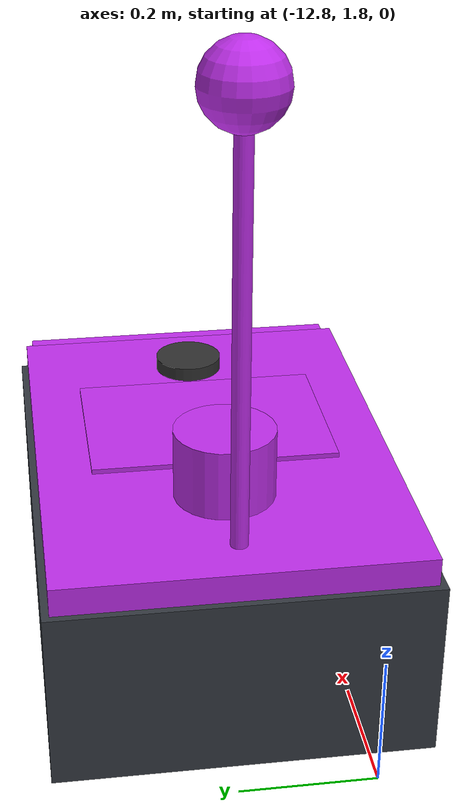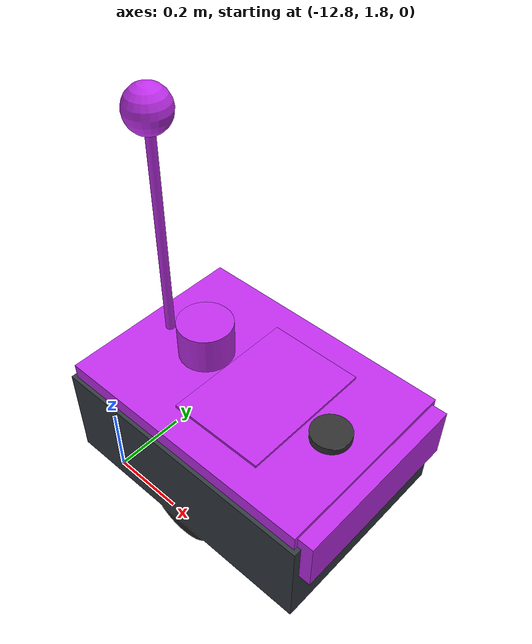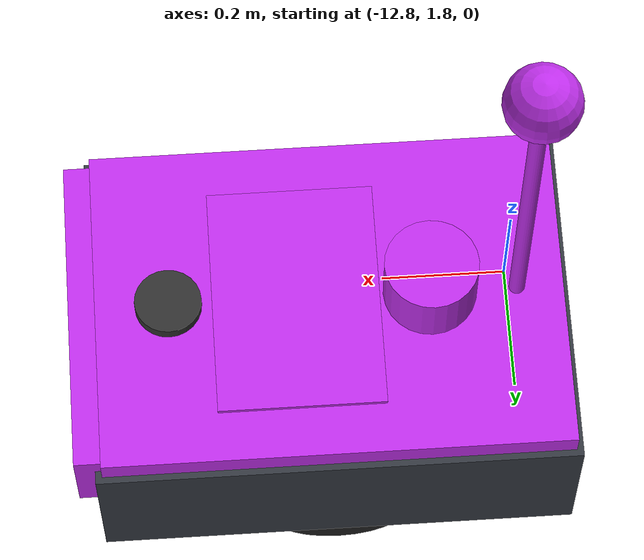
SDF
<sdf version="1.8">
 <world name="warehouse_3d">
  <model name="amr_robot_epsilon">
   <pose>-12.5 2.0 0.05 0 0 0.0</pose>
   <link name="robot_epsilon/base_footprint">
    <inertial>
     <pose>0.003956442831215972 0 0.17635208711433761 0 0 0</pose>
     <mass>27.550000000000001</mass>
     <inertia>
      <ixx>0.50626838475499114</ixx>
      <ixy>0</ixy>
      <ixz>-0.012657622504537201</ixz>
      <iyy>0.86224713248638873</iyy>
      <iyz>0</iyz>
      <izz>1.012238747731397</izz>
     </inertia>
    </inertial>
    <collision name="robot_epsilon/base_footprint_fixed_joint_lump__robot_epsilon/base_link_collision">
     <pose>0 0 0.17999999999999999 0 0 0</pose>
     <geometry><box><size>0.71999999999999997 0.52000000000000002 0.26000000000000001</size></box></geometry>
    </collision>
    <collision name="robot_epsilon/base_footprint_fixed_joint_lump__robot_epsilon/front_caster_link_collision_1">
     <pose>0.28000000000000003 0 0.040000000000000001 0 0 0</pose>
     <geometry><sphere><radius>0.040000000000000001</radius></sphere></geometry>
    </collision>
    <collision name="robot_epsilon/base_footprint_fixed_joint_lump__robot_epsilon/lidar_link_collision_2">
     <pose>0.23999999999999999 0 0.34000000000000002 0 0 0</pose>
     <geometry>
      <cylinder><length>0.059999999999999998</length><radius>0.050000000000000003</radius></cylinder>
     </geometry>
    </collision>
    <collision name="robot_epsilon/base_footprint_fixed_joint_lump__robot_epsilon/rear_caster_link_collision_3">
     <pose>-0.28000000000000003 0 0.040000000000000001 0 0 0</pose>
     <geometry><sphere><radius>0.040000000000000001</radius></sphere></geometry>
    </collision>
    <visual name="robot_epsilon/base_footprint_fixed_joint_lump__robot_epsilon/base_link_visual">
     <pose>0 0 0.17999999999999999 0 0 0</pose>
     <geometry><box><size>0.71999999999999997 0.52000000000000002 0.26000000000000001</size></box></geometry>
     <material>
      <diffuse>0.200000003 0.219999999 0.25 1</diffuse>
      <ambient>0.150000006 0.180000007 0.200000003 1</ambient>
     </material>
    </visual>
    <visual name="robot_epsilon/base_footprint_fixed_joint_lump__robot_epsilon/camera_link_visual_1">
     <pose>0.37 0 0.20000000000000001 0 0 0</pose>
     <geometry><box><size>0.029999999999999999 0.080000000000000002 0.029999999999999999</size></box></geometry>
     <material>
      <diffuse>0.187500015 0.187500015 0.187500015 1</diffuse>
      <ambient>0.187500015 0.187500015 0.187500015 1</ambient>
     </material>
    </visual>
    <visual name="robot_epsilon/base_footprint_fixed_joint_lump__robot_epsilon/front_caster_link_visual_2">
     <pose>0.28000000000000003 0 0.040000000000000001 0 0 0</pose>
     <geometry><sphere><radius>0.040000000000000001</radius></sphere></geometry>
     <material><diffuse>0.125 0.125 0.125 1</diffuse><ambient>0.125 0.125 0.125 1</ambient></material>
    </visual>
    <visual name="robot_epsilon/base_footprint_fixed_joint_lump__robot_epsilon/lidar_link_visual_3">
     <pose>0.23999999999999999 0 0.34000000000000002 0 0 0</pose>
     <geometry>
      <cylinder><length>0.059999999999999998</length><radius>0.050000000000000003</radius></cylinder>
     </geometry>
     <material>
      <diffuse>0.187500015 0.187500015 0.187500015 1</diffuse>
      <ambient>0.187500015 0.187500015 0.187500015 1</ambient>
     </material>
    </visual>
    <visual name="robot_epsilon/base_footprint_fixed_joint_lump__robot_epsilon/rear_caster_link_visual_4">
     <pose>-0.28000000000000003 0 0.040000000000000001 0 0 0</pose>
     <geometry><sphere><radius>0.040000000000000001</radius></sphere></geometry>
     <material><diffuse>0.125 0.125 0.125 1</diffuse><ambient>0.125 0.125 0.125 1</ambient></material>
    </visual>
    <visual name="robot_epsilon/base_footprint_fixed_joint_lump__robot_epsilon/shell_link_visual_5">
     <pose>0 0 0.33000000000000002 0 0 0</pose>
     <geometry><box><size>0.69999999999999996 0.5 0.040000000000000001</size></box></geometry>
     <material>
      <diffuse>0.75 0.180000007 0.920000017 1</diffuse>
      <ambient>0.649999976 0.119999997 0.800000012 1</ambient>
      <specular>0.600000024 0.600000024 0.600000024 1</specular>
      <emissive>0.349999994 0.0799999982 0.400000006 1</emissive>
     </material>
    </visual>
    <visual name="robot_epsilon/base_footprint_fixed_joint_lump__robot_epsilon/shell_link_visual_6">
     <pose>0.35999999999999999 0 0.27000000000000002 0 0 0</pose>
     <geometry><box><size>0.059999999999999998 0.47999999999999998 0.14000000000000001</size></box></geometry>
     <material>
      <diffuse>0.75 0.180000007 0.920000017 1</diffuse>
      <ambient>0.649999976 0.119999997 0.800000012 1</ambient>
      <specular>0.600000024 0.600000024 0.600000024 1</specular>
      <emissive>0.349999994 0.0799999982 0.400000006 1</emissive>
     </material>
    </visual>
    <visual name="robot_epsilon/base_footprint_fixed_joint_lump__robot_epsilon/shell_link_visual_7">
     <pose>-0.14999999999999999 0 0.40000000000000002 0 0 0</pose>
     <geometry>
      <cylinder><length>0.10000000000000001</length><radius>0.070000000000000007</radius></cylinder>
     </geometry>
     <material>
      <diffuse>0.75 0.180000007 0.920000017 1</diffuse>
      <ambient>0.649999976 0.119999997 0.800000012 1</ambient>
      <specular>0.600000024 0.600000024 0.600000024 1</specular>
      <emissive>0.349999994 0.0799999982 0.400000006 1</emissive>
     </material>
    </visual>
    <visual name="robot_epsilon/base_footprint_fixed_joint_lump__robot_epsilon/shell_link_visual_8">
     <pose>-0.28000000000000003 0 0.65000000000000002 0 0 0</pose>
     <geometry><cylinder><length>0.59999999999999998</length><radius>0.012</radius></cylinder></geometry>
     <material>
      <diffuse>0.75 0.180000007 0.920000017 1</diffuse>
      <ambient>0.649999976 0.119999997 0.800000012 1</ambient>
      <specular>0.600000024 0.600000024 0.600000024 1</specular>
      <emissive>0.349999994 0.0799999982 0.400000006 1</emissive>
     </material>
    </visual>
    <visual name="robot_epsilon/base_footprint_fixed_joint_lump__robot_epsilon/shell_link_visual_9">
     <pose>-0.28000000000000003 0 0.94999999999999996 0 0 0</pose>
     <geometry><sphere><radius>0.055</radius></sphere></geometry>
     <material>
      <diffuse>0.75 0.180000007 0.920000017 1</diffuse>
      <ambient>0.649999976 0.119999997 0.800000012 1</ambient>
      <specular>0.600000024 0.600000024 0.600000024 1</specular>
      <emissive>0.349999994 0.0799999982 0.400000006 1</emissive>
     </material>
    </visual>
    <visual name="robot_epsilon/base_footprint_fixed_joint_lump__robot_epsilon/shell_link_visual_10">
     <pose>0.050000000000000003 0 0.35199999999999998 0 0 0</pose>
     <geometry><box><size>0.25 0.34999999999999998 0.01</size></box></geometry>
     <material>
      <diffuse>0.75 0.180000007 0.920000017 1</diffuse>
      <ambient>0.649999976 0.119999997 0.800000012 1</ambient>
      <specular>0.600000024 0.600000024 0.600000024 1</specular>
      <emissive>0.349999994 0.0799999982 0.400000006 1</emissive>
     </material>
    </visual>
    <sensor name="camera" type="camera">
     <pose relative_to="robot_epsilon/camera_link">0 0 0 0 0 0</pose>
     <topic>robot_epsilon/camera/image_raw</topic>
     <update_rate>15</update_rate>
     <camera>
      <horizontal_fov>1.3962634</horizontal_fov>
      <image><width>640</width><height>480</height><format>R8G8B8</format></image>
      <clip><near>0.10000000000000001</near><far>20</far></clip>
     </camera>
     <always_on>true</always_on>
     <visualize>true</visualize>
    </sensor>
    <sensor name="imu" type="imu">
     <pose relative_to="robot_epsilon/imu_link">0 0 0 0 0 0</pose>
     <topic>robot_epsilon/imu</topic>
     <update_rate>50</update_rate>
     <always_on>true</always_on>
     <visualize>false</visualize>
    </sensor>
    <sensor name="lidar" type="gpu_lidar">
     <pose relative_to="robot_epsilon/lidar_link">0 0 0 0 0 0</pose>
     <topic>robot_epsilon/scan</topic>
     <update_rate>15</update_rate>
     <ray>
      <scan>
       <horizontal>
        <samples>360</samples>
        <resolution>1</resolution>
        <min_angle>-3.1415899999999999</min_angle>
        <max_angle>3.1415899999999999</max_angle>
       </horizontal>
      </scan>
      <range><min>0.14999999999999999</min><max>16</max><resolution>0.01</resolution></range>
     </ray>
     <always_on>true</always_on>
     <visualize>true</visualize>
    </sensor>
   </link>
   <joint name="robot_epsilon/left_wheel_joint" type="revolute">
    <pose relative_to="robot_epsilon/base_footprint">0 0.23000000000000001 0.10000000000000001 0 0 0</pose>
    <parent>robot_epsilon/base_footprint</parent>
    <child>robot_epsilon/left_wheel_link</child>
    <axis>
     <xyz>0 1 0</xyz>
     <limit><lower>-inf</lower><upper>inf</upper></limit>
     <dynamics><spring_reference>0</spring_reference><spring_stiffness>0</spring_stiffness></dynamics>
    </axis>
   </joint>
   <link name="robot_epsilon/left_wheel_link">
    <pose relative_to="robot_epsilon/left_wheel_joint">0 0 0 0 0 0</pose>
    <inertial>
     <mass>2.5</mass>
     <inertia>
      <ixx>0.0070000000000000001</ixx>
      <ixy>0</ixy>
      <ixz>0</ixz>
      <iyy>0.0070000000000000001</iyy>
      <iyz>0</iyz>
      <izz>0.012500000000000001</izz>
     </inertia>
    </inertial>
    <collision name="robot_epsilon/left_wheel_link_collision">
     <pose>0 0 0 1.5707963267948959 0 0</pose>
     <geometry>
      <cylinder><length>0.050000000000000003</length><radius>0.10000000000000001</radius></cylinder>
     </geometry>
    </collision>
    <visual name="robot_epsilon/left_wheel_link_visual">
     <pose>0 0 0 1.5707963267948959 0 0</pose>
     <geometry>
      <cylinder><length>0.050000000000000003</length><radius>0.10000000000000001</radius></cylinder>
     </geometry>
     <material><diffuse>0.125 0.125 0.125 1</diffuse><ambient>0.125 0.125 0.125 1</ambient></material>
    </visual>
   </link>
   <joint name="robot_epsilon/right_wheel_joint" type="revolute">
    <pose relative_to="robot_epsilon/base_footprint">0 -0.23000000000000001 0.10000000000000001 0 0 0</pose>
    <parent>robot_epsilon/base_footprint</parent>
    <child>robot_epsilon/right_wheel_link</child>
    <axis>
     <xyz>0 1 0</xyz>
     <limit><lower>-inf</lower><upper>inf</upper></limit>
     <dynamics><spring_reference>0</spring_reference><spring_stiffness>0</spring_stiffness></dynamics>
    </axis>
   </joint>
   <link name="robot_epsilon/right_wheel_link">
    <pose relative_to="robot_epsilon/right_wheel_joint">0 0 0 0 0 0</pose>
    <inertial>
     <mass>2.5</mass>
     <inertia>
      <ixx>0.0070000000000000001</ixx>
      <ixy>0</ixy>
      <ixz>0</ixz>
      <iyy>0.0070000000000000001</iyy>
      <iyz>0</iyz>
      <izz>0.012500000000000001</izz>
     </inertia>
    </inertial>
    <collision name="robot_epsilon/right_wheel_link_collision">
     <pose>0 0 0 1.5707963267948959 0 0</pose>
     <geometry>
      <cylinder><length>0.050000000000000003</length><radius>0.10000000000000001</radius></cylinder>
     </geometry>
    </collision>
    <visual name="robot_epsilon/right_wheel_link_visual">
     <pose>0 0 0 1.5707963267948959 0 0</pose>
     <geometry>
      <cylinder><length>0.050000000000000003</length><radius>0.10000000000000001</radius></cylinder>
     </geometry>
     <material><diffuse>0.125 0.125 0.125 1</diffuse><ambient>0.125 0.125 0.125 1</ambient></material>
    </visual>
   </link>
   <plugin name="gz::sim::systems::DiffDrive" filename="gz-sim-diff-drive-system">
    <left_joint>robot_epsilon/left_wheel_joint</left_joint>
    <right_joint>robot_epsilon/right_wheel_joint</right_joint>
    <wheel_separation>0.46</wheel_separation>
    <wheel_radius>0.1</wheel_radius>
    <max_linear_acceleration>1.5</max_linear_acceleration>
    <min_linear_acceleration>-1.5</min_linear_acceleration>
    <max_angular_acceleration>2.0</max_angular_acceleration>
    <min_angular_acceleration>-2.0</min_angular_acceleration>
    <max_linear_velocity>3.0</max_linear_velocity>
    <min_linear_velocity>-3.0</min_linear_velocity>
    <max_angular_velocity>2.5</max_angular_velocity>
    <min_angular_velocity>-2.5</min_angular_velocity>
    <topic>robot_epsilon/cmd_vel</topic>
    <odom_topic>robot_epsilon/odom</odom_topic>
    <tf_topic>robot_epsilon/tf</tf_topic>
    <frame_id>robot_epsilon/odom</frame_id>
    <child_frame_id>robot_epsilon/base_footprint</child_frame_id>
    <odom_publisher_frequency>30</odom_publisher_frequency>
   </plugin>
   <plugin name="gz::sim::systems::JointStatePublisher" filename="gz-sim-joint-state-publisher-system">
    <topic>robot_epsilon/joint_states</topic>
    <joint_name>robot_epsilon/left_wheel_joint</joint_name>
    <joint_name>robot_epsilon/right_wheel_joint</joint_name>
   </plugin>
   <frame name="robot_epsilon/camera_joint" attached_to="robot_epsilon/base_link">
    <pose>0.37 0 0.10000000000000001 0 0 0</pose>
   </frame>
   <frame name="robot_epsilon/camera_link" attached_to="robot_epsilon/camera_joint"/>
   <frame name="robot_epsilon/front_caster_joint" attached_to="robot_epsilon/base_link">
    <pose>0.28000000000000003 0 -0.059999999999999998 0 0 0</pose>
   </frame>
   <frame name="robot_epsilon/front_caster_link" attached_to="robot_epsilon/front_caster_joint"/>
   <frame name="robot_epsilon/imu_joint" attached_to="robot_epsilon/base_link">
    <pose>0 0 0.050000000000000003 0 0 0</pose>
   </frame>
   <frame name="robot_epsilon/imu_link" attached_to="robot_epsilon/imu_joint"/>
   <frame name="robot_epsilon/lidar_joint" attached_to="robot_epsilon/base_link">
    <pose>0.23999999999999999 0 0.23999999999999999 0 0 0</pose>
   </frame>
   <frame name="robot_epsilon/lidar_link" attached_to="robot_epsilon/lidar_joint"/>
   <frame name="robot_epsilon/rear_caster_joint" attached_to="robot_epsilon/base_link">
    <pose>-0.28000000000000003 0 -0.059999999999999998 0 0 0</pose>
   </frame>
   <frame name="robot_epsilon/rear_caster_link" attached_to="robot_epsilon/rear_caster_joint"/>
   <frame name="robot_epsilon/shell_joint" attached_to="robot_epsilon/base_link">
    <pose>0 0 0.23000000000000001 0 0 0</pose>
   </frame>
   <frame name="robot_epsilon/shell_link" attached_to="robot_epsilon/shell_joint"/>
   <frame name="robot_epsilon/base_joint" attached_to="robot_epsilon/base_footprint">
    <pose>0 0 0.10000000000000001 0 0 0</pose>
   </frame>
   <frame name="robot_epsilon/base_link" attached_to="robot_epsilon/base_joint"/>
  </model>
 </world>
</sdf>
